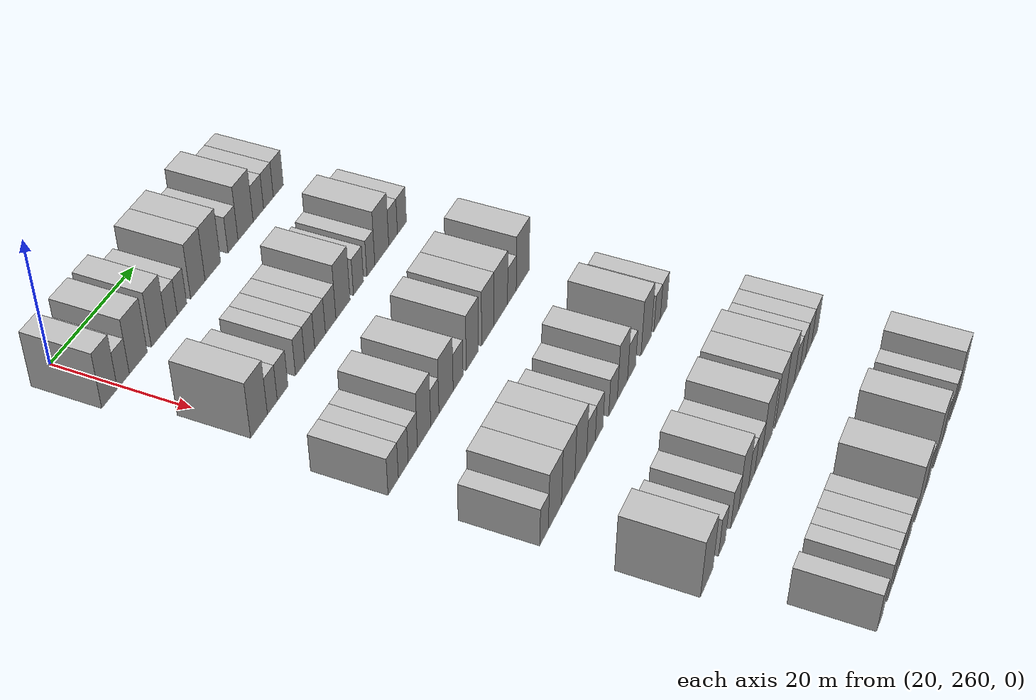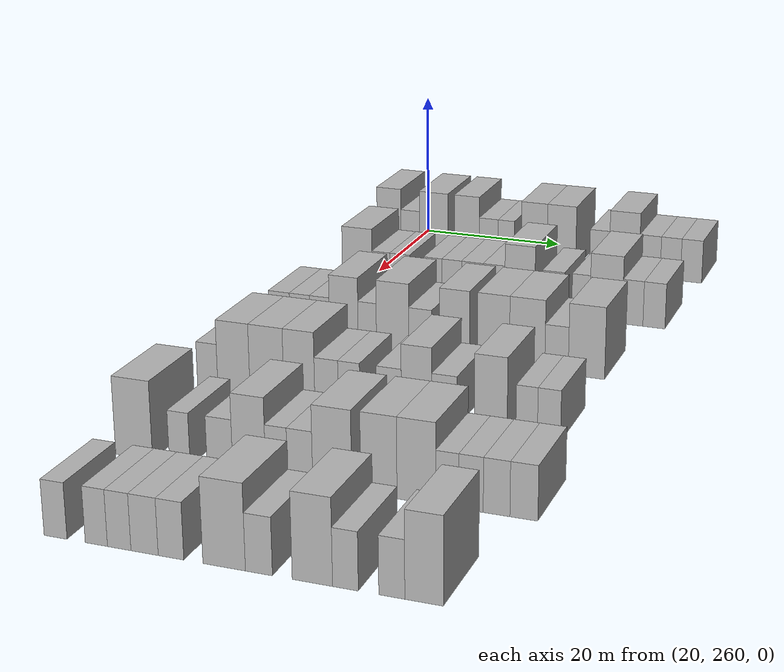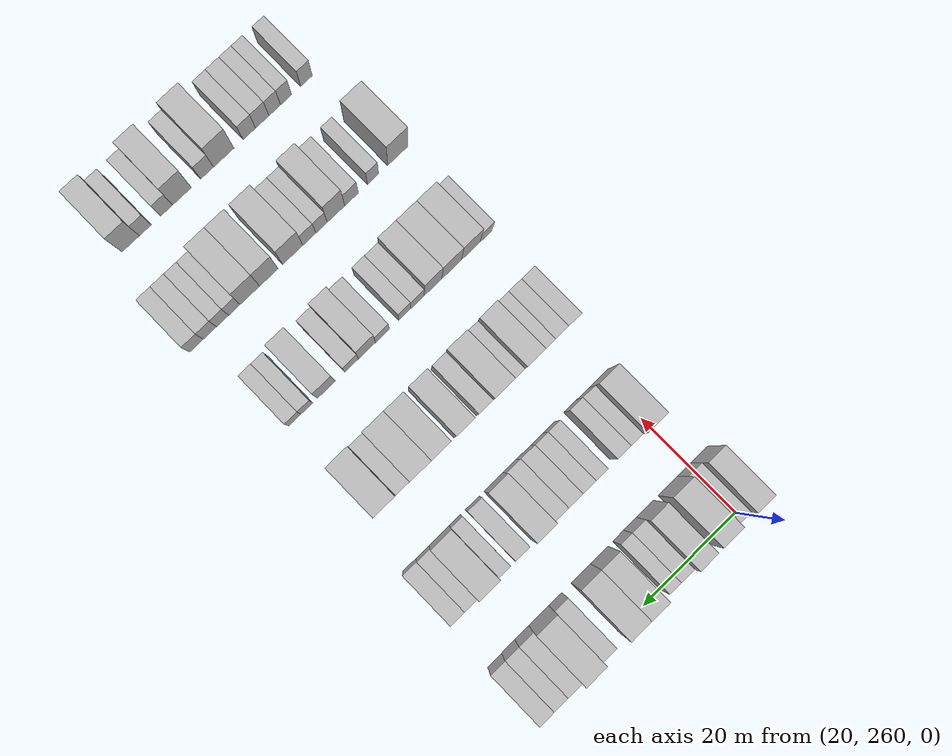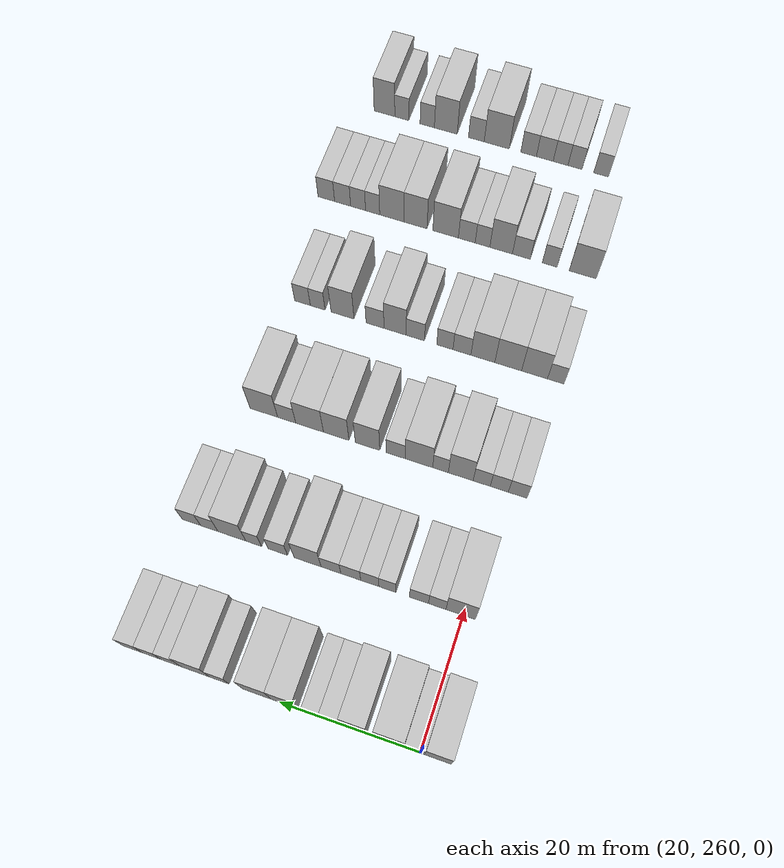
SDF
<sdf version="1.6">
 <world name="default">
  <model name="building_148">
   <static>1</static>
   <pose>25.0000 257.5959 0 0.000000 0.000000 0.000000</pose>
   <link name="link">
    <pose>0 0 4.50 0 0 0</pose>
    <collision name="collision"><geometry><box><size>10.0000 3.6611 9.0000</size></box></geometry></collision>
    <visual name="visual">
     <cast_shadows>0</cast_shadows>
     <geometry><box><size>10.0000 3.6611 9.0000</size></box></geometry>
     <material>
      <script>
       <uri>model://HANNAS_wall/materials/scripts</uri>
       <uri>model://HANNAS_wall/materials/textures</uri>
       <name>vrc/HANNAS_wall</name>
      </script>
     </material>
    </visual>
   </link>
  </model>
  <model name="building_149">
   <static>1</static>
   <pose>25.0000 260.8402 0 0.000000 0.000000 0.000000</pose>
   <link name="link">
    <pose>0 0 3.00 0 0 0</pose>
    <collision name="collision"><geometry><box><size>10.0000 2.8275 6.0000</size></box></geometry></collision>
    <visual name="visual">
     <cast_shadows>0</cast_shadows>
     <geometry><box><size>10.0000 2.8275 6.0000</size></box></geometry>
     <material>
      <script>
       <uri>model://HANNAS_wall/materials/scripts</uri>
       <uri>model://HANNAS_wall/materials/textures</uri>
       <name>vrc/HANNAS_wall</name>
      </script>
     </material>
    </visual>
   </link>
  </model>
  <model name="building_150">
   <static>1</static>
   <pose>25.0000 264.4085 0 0.000000 0.000000 0.000000</pose>
   <link name="link">
    <pose>0 0 4.50 0 0 0</pose>
    <collision name="collision"><geometry><box><size>10.0000 4.3092 9.0000</size></box></geometry></collision>
    <visual name="visual">
     <cast_shadows>0</cast_shadows>
     <geometry><box><size>10.0000 4.3092 9.0000</size></box></geometry>
     <material>
      <script>
       <uri>model://HANNAS_wall/materials/scripts</uri>
       <uri>model://HANNAS_wall/materials/textures</uri>
       <name>vrc/HANNAS_wall</name>
      </script>
     </material>
    </visual>
   </link>
  </model>
  <model name="building_151">
   <static>1</static>
   <pose>25.0000 269.4205 0 0.000000 0.000000 0.000000</pose>
   <link name="link">
    <pose>0 0 4.50 0 0 0</pose>
    <collision name="collision"><geometry><box><size>10.0000 3.7147 9.0000</size></box></geometry></collision>
    <visual name="visual">
     <cast_shadows>0</cast_shadows>
     <geometry><box><size>10.0000 3.7147 9.0000</size></box></geometry>
     <material>
      <script>
       <uri>model://HANNAS_wall/materials/scripts</uri>
       <uri>model://HANNAS_wall/materials/textures</uri>
       <name>vrc/HANNAS_wall</name>
      </script>
     </material>
    </visual>
   </link>
  </model>
  <model name="building_152">
   <static>1</static>
   <pose>25.0000 272.6669 0 0.000000 0.000000 0.000000</pose>
   <link name="link">
    <pose>0 0 3.00 0 0 0</pose>
    <collision name="collision"><geometry><box><size>10.0000 2.7781 6.0000</size></box></geometry></collision>
    <visual name="visual">
     <cast_shadows>0</cast_shadows>
     <geometry><box><size>10.0000 2.7781 6.0000</size></box></geometry>
     <material>
      <script>
       <uri>model://HANNAS_wall/materials/scripts</uri>
       <uri>model://HANNAS_wall/materials/textures</uri>
       <name>vrc/HANNAS_wall</name>
      </script>
     </material>
    </visual>
   </link>
  </model>
  <model name="building_153">
   <static>1</static>
   <pose>25.0000 275.2567 0 0.000000 0.000000 0.000000</pose>
   <link name="link">
    <pose>0 0 3.00 0 0 0</pose>
    <collision name="collision"><geometry><box><size>10.0000 2.4016 6.0000</size></box></geometry></collision>
    <visual name="visual">
     <cast_shadows>0</cast_shadows>
     <geometry><box><size>10.0000 2.4016 6.0000</size></box></geometry>
     <material>
      <script>
       <uri>model://HANNAS_wall/materials/scripts</uri>
       <uri>model://HANNAS_wall/materials/textures</uri>
       <name>vrc/HANNAS_wall</name>
      </script>
     </material>
    </visual>
   </link>
  </model>
  <model name="building_154">
   <static>1</static>
   <pose>25.0000 279.3544 0 0.000000 0.000000 0.000000</pose>
   <link name="link">
    <pose>0 0 4.50 0 0 0</pose>
    <collision name="collision"><geometry><box><size>10.0000 3.7937 9.0000</size></box></geometry></collision>
    <visual name="visual">
     <cast_shadows>0</cast_shadows>
     <geometry><box><size>10.0000 3.7937 9.0000</size></box></geometry>
     <material>
      <script>
       <uri>model://HANNAS_wall/materials/scripts</uri>
       <uri>model://HANNAS_wall/materials/textures</uri>
       <name>vrc/HANNAS_wall</name>
      </script>
     </material>
    </visual>
   </link>
  </model>
  <model name="building_155">
   <static>1</static>
   <pose>25.0000 283.3236 0 0.000000 0.000000 0.000000</pose>
   <link name="link">
    <pose>0 0 4.50 0 0 0</pose>
    <collision name="collision"><geometry><box><size>10.0000 4.1448 9.0000</size></box></geometry></collision>
    <visual name="visual">
     <cast_shadows>0</cast_shadows>
     <geometry><box><size>10.0000 4.1448 9.0000</size></box></geometry>
     <material>
      <script>
       <uri>model://HANNAS_wall/materials/scripts</uri>
       <uri>model://HANNAS_wall/materials/textures</uri>
       <name>vrc/HANNAS_wall</name>
      </script>
     </material>
    </visual>
   </link>
  </model>
  <model name="building_156">
   <static>1</static>
   <pose>25.0000 288.7891 0 0.000000 0.000000 0.000000</pose>
   <link name="link">
    <pose>0 0 3.00 0 0 0</pose>
    <collision name="collision"><geometry><box><size>10.0000 2.7862 6.0000</size></box></geometry></collision>
    <visual name="visual">
     <cast_shadows>0</cast_shadows>
     <geometry><box><size>10.0000 2.7862 6.0000</size></box></geometry>
     <material>
      <script>
       <uri>model://HANNAS_wall/materials/scripts</uri>
       <uri>model://HANNAS_wall/materials/textures</uri>
       <name>vrc/HANNAS_wall</name>
      </script>
     </material>
    </visual>
   </link>
  </model>
  <model name="building_157">
   <static>1</static>
   <pose>25.0000 292.3064 0 0.000000 0.000000 0.000000</pose>
   <link name="link">
    <pose>0 0 4.50 0 0 0</pose>
    <collision name="collision"><geometry><box><size>10.0000 4.2484 9.0000</size></box></geometry></collision>
    <visual name="visual">
     <cast_shadows>0</cast_shadows>
     <geometry><box><size>10.0000 4.2484 9.0000</size></box></geometry>
     <material>
      <script>
       <uri>model://HANNAS_wall/materials/scripts</uri>
       <uri>model://HANNAS_wall/materials/textures</uri>
       <name>vrc/HANNAS_wall</name>
      </script>
     </material>
    </visual>
   </link>
  </model>
  <model name="building_158">
   <static>1</static>
   <pose>25.0000 295.9214 0 0.000000 0.000000 0.000000</pose>
   <link name="link">
    <pose>0 0 3.00 0 0 0</pose>
    <collision name="collision"><geometry><box><size>10.0000 2.9815 6.0000</size></box></geometry></collision>
    <visual name="visual">
     <cast_shadows>0</cast_shadows>
     <geometry><box><size>10.0000 2.9815 6.0000</size></box></geometry>
     <material>
      <script>
       <uri>model://HANNAS_wall/materials/scripts</uri>
       <uri>model://HANNAS_wall/materials/textures</uri>
       <name>vrc/HANNAS_wall</name>
      </script>
     </material>
    </visual>
   </link>
  </model>
  <model name="building_159">
   <static>1</static>
   <pose>25.0000 298.8281 0 0.000000 0.000000 0.000000</pose>
   <link name="link">
    <pose>0 0 3.00 0 0 0</pose>
    <collision name="collision"><geometry><box><size>10.0000 2.8319 6.0000</size></box></geometry></collision>
    <visual name="visual">
     <cast_shadows>0</cast_shadows>
     <geometry><box><size>10.0000 2.8319 6.0000</size></box></geometry>
     <material>
      <script>
       <uri>model://HANNAS_wall/materials/scripts</uri>
       <uri>model://HANNAS_wall/materials/textures</uri>
       <name>vrc/HANNAS_wall</name>
      </script>
     </material>
    </visual>
   </link>
  </model>
  <model name="building_160">
   <static>1</static>
   <pose>25.0000 301.7126 0 0.000000 0.000000 0.000000</pose>
   <link name="link">
    <pose>0 0 3.00 0 0 0</pose>
    <collision name="collision"><geometry><box><size>10.0000 2.9373 6.0000</size></box></geometry></collision>
    <visual name="visual">
     <cast_shadows>0</cast_shadows>
     <geometry><box><size>10.0000 2.9373 6.0000</size></box></geometry>
     <material>
      <script>
       <uri>model://HANNAS_wall/materials/scripts</uri>
       <uri>model://HANNAS_wall/materials/textures</uri>
       <name>vrc/HANNAS_wall</name>
      </script>
     </material>
    </visual>
   </link>
  </model>
  <model name="building_323">
   <static>1</static>
   <pose>44.0000 260.4256 0 0.000000 0.000000 0.000000</pose>
   <link name="link">
    <pose>0 0 4.50 0 0 0</pose>
    <collision name="collision"><geometry><box><size>10.0000 4.2728 9.0000</size></box></geometry></collision>
    <visual name="visual">
     <cast_shadows>0</cast_shadows>
     <geometry><box><size>10.0000 4.2728 9.0000</size></box></geometry>
     <material>
      <script>
       <uri>model://HANNAS_wall/materials/scripts</uri>
       <uri>model://HANNAS_wall/materials/textures</uri>
       <name>vrc/HANNAS_wall</name>
      </script>
     </material>
    </visual>
   </link>
  </model>
  <model name="building_324">
   <static>1</static>
   <pose>44.0000 263.8380 0 0.000000 0.000000 0.000000</pose>
   <link name="link">
    <pose>0 0 3.00 0 0 0</pose>
    <collision name="collision"><geometry><box><size>10.0000 2.5521 6.0000</size></box></geometry></collision>
    <visual name="visual">
     <cast_shadows>0</cast_shadows>
     <geometry><box><size>10.0000 2.5521 6.0000</size></box></geometry>
     <material>
      <script>
       <uri>model://HANNAS_wall/materials/scripts</uri>
       <uri>model://HANNAS_wall/materials/textures</uri>
       <name>vrc/HANNAS_wall</name>
      </script>
     </material>
    </visual>
   </link>
  </model>
  <model name="building_325">
   <static>1</static>
   <pose>44.0000 266.5195 0 0.000000 0.000000 0.000000</pose>
   <link name="link">
    <pose>0 0 3.00 0 0 0</pose>
    <collision name="collision"><geometry><box><size>10.0000 2.8108 6.0000</size></box></geometry></collision>
    <visual name="visual">
     <cast_shadows>0</cast_shadows>
     <geometry><box><size>10.0000 2.8108 6.0000</size></box></geometry>
     <material>
      <script>
       <uri>model://HANNAS_wall/materials/scripts</uri>
       <uri>model://HANNAS_wall/materials/textures</uri>
       <name>vrc/HANNAS_wall</name>
      </script>
     </material>
    </visual>
   </link>
  </model>
  <model name="building_326">
   <static>1</static>
   <pose>44.0000 271.1930 0 0.000000 0.000000 0.000000</pose>
   <link name="link">
    <pose>0 0 3.00 0 0 0</pose>
    <collision name="collision"><geometry><box><size>10.0000 2.5361 6.0000</size></box></geometry></collision>
    <visual name="visual">
     <cast_shadows>0</cast_shadows>
     <geometry><box><size>10.0000 2.5361 6.0000</size></box></geometry>
     <material>
      <script>
       <uri>model://HANNAS_wall/materials/scripts</uri>
       <uri>model://HANNAS_wall/materials/textures</uri>
       <name>vrc/HANNAS_wall</name>
      </script>
     </material>
    </visual>
   </link>
  </model>
  <model name="building_327">
   <static>1</static>
   <pose>44.0000 273.8186 0 0.000000 0.000000 0.000000</pose>
   <link name="link">
    <pose>0 0 3.00 0 0 0</pose>
    <collision name="collision"><geometry><box><size>10.0000 2.7152 6.0000</size></box></geometry></collision>
    <visual name="visual">
     <cast_shadows>0</cast_shadows>
     <geometry><box><size>10.0000 2.7152 6.0000</size></box></geometry>
     <material>
      <script>
       <uri>model://HANNAS_wall/materials/scripts</uri>
       <uri>model://HANNAS_wall/materials/textures</uri>
       <name>vrc/HANNAS_wall</name>
      </script>
     </material>
    </visual>
   </link>
  </model>
  <model name="building_328">
   <static>1</static>
   <pose>44.0000 276.6700 0 0.000000 0.000000 0.000000</pose>
   <link name="link">
    <pose>0 0 3.00 0 0 0</pose>
    <collision name="collision"><geometry><box><size>10.0000 2.9875 6.0000</size></box></geometry></collision>
    <visual name="visual">
     <cast_shadows>0</cast_shadows>
     <geometry><box><size>10.0000 2.9875 6.0000</size></box></geometry>
     <material>
      <script>
       <uri>model://HANNAS_wall/materials/scripts</uri>
       <uri>model://HANNAS_wall/materials/textures</uri>
       <name>vrc/HANNAS_wall</name>
      </script>
     </material>
    </visual>
   </link>
  </model>
  <model name="building_329">
   <static>1</static>
   <pose>44.0000 279.6482 0 0.000000 0.000000 0.000000</pose>
   <link name="link">
    <pose>0 0 3.00 0 0 0</pose>
    <collision name="collision"><geometry><box><size>10.0000 2.9689 6.0000</size></box></geometry></collision>
    <visual name="visual">
     <cast_shadows>0</cast_shadows>
     <geometry><box><size>10.0000 2.9689 6.0000</size></box></geometry>
     <material>
      <script>
       <uri>model://HANNAS_wall/materials/scripts</uri>
       <uri>model://HANNAS_wall/materials/textures</uri>
       <name>vrc/HANNAS_wall</name>
      </script>
     </material>
    </visual>
   </link>
  </model>
  <model name="building_330">
   <static>1</static>
   <pose>44.0000 283.1737 0 0.000000 0.000000 0.000000</pose>
   <link name="link">
    <pose>0 0 4.50 0 0 0</pose>
    <collision name="collision"><geometry><box><size>10.0000 4.0821 9.0000</size></box></geometry></collision>
    <visual name="visual">
     <cast_shadows>0</cast_shadows>
     <geometry><box><size>10.0000 4.0821 9.0000</size></box></geometry>
     <material>
      <script>
       <uri>model://HANNAS_wall/materials/scripts</uri>
       <uri>model://HANNAS_wall/materials/textures</uri>
       <name>vrc/HANNAS_wall</name>
      </script>
     </material>
    </visual>
   </link>
  </model>
  <model name="building_331">
   <static>1</static>
   <pose>44.0000 287.7044 0 0.000000 0.000000 0.000000</pose>
   <link name="link">
    <pose>0 0 3.00 0 0 0</pose>
    <collision name="collision"><geometry><box><size>10.0000 2.9794 6.0000</size></box></geometry></collision>
    <visual name="visual">
     <cast_shadows>0</cast_shadows>
     <geometry><box><size>10.0000 2.9794 6.0000</size></box></geometry>
     <material>
      <script>
       <uri>model://HANNAS_wall/materials/scripts</uri>
       <uri>model://HANNAS_wall/materials/textures</uri>
       <name>vrc/HANNAS_wall</name>
      </script>
     </material>
    </visual>
   </link>
  </model>
  <model name="building_332">
   <static>1</static>
   <pose>44.0000 291.3998 0 0.000000 0.000000 0.000000</pose>
   <link name="link">
    <pose>0 0 3.00 0 0 0</pose>
    <collision name="collision"><geometry><box><size>10.0000 2.4114 6.0000</size></box></geometry></collision>
    <visual name="visual">
     <cast_shadows>0</cast_shadows>
     <geometry><box><size>10.0000 2.4114 6.0000</size></box></geometry>
     <material>
      <script>
       <uri>model://HANNAS_wall/materials/scripts</uri>
       <uri>model://HANNAS_wall/materials/textures</uri>
       <name>vrc/HANNAS_wall</name>
      </script>
     </material>
    </visual>
   </link>
  </model>
  <model name="building_333">
   <static>1</static>
   <pose>44.0000 294.7535 0 0.000000 0.000000 0.000000</pose>
   <link name="link">
    <pose>0 0 4.50 0 0 0</pose>
    <collision name="collision"><geometry><box><size>10.0000 4.2961 9.0000</size></box></geometry></collision>
    <visual name="visual">
     <cast_shadows>0</cast_shadows>
     <geometry><box><size>10.0000 4.2961 9.0000</size></box></geometry>
     <material>
      <script>
       <uri>model://HANNAS_wall/materials/scripts</uri>
       <uri>model://HANNAS_wall/materials/textures</uri>
       <name>vrc/HANNAS_wall</name>
      </script>
     </material>
    </visual>
   </link>
  </model>
  <model name="building_334">
   <static>1</static>
   <pose>44.0000 298.2589 0 0.000000 0.000000 0.000000</pose>
   <link name="link">
    <pose>0 0 3.00 0 0 0</pose>
    <collision name="collision"><geometry><box><size>10.0000 2.7146 6.0000</size></box></geometry></collision>
    <visual name="visual">
     <cast_shadows>0</cast_shadows>
     <geometry><box><size>10.0000 2.7146 6.0000</size></box></geometry>
     <material>
      <script>
       <uri>model://HANNAS_wall/materials/scripts</uri>
       <uri>model://HANNAS_wall/materials/textures</uri>
       <name>vrc/HANNAS_wall</name>
      </script>
     </material>
    </visual>
   </link>
  </model>
  <model name="building_335">
   <static>1</static>
   <pose>44.0000 301.0510 0 0.000000 0.000000 0.000000</pose>
   <link name="link">
    <pose>0 0 3.00 0 0 0</pose>
    <collision name="collision"><geometry><box><size>10.0000 2.8697 6.0000</size></box></geometry></collision>
    <visual name="visual">
     <cast_shadows>0</cast_shadows>
     <geometry><box><size>10.0000 2.8697 6.0000</size></box></geometry>
     <material>
      <script>
       <uri>model://HANNAS_wall/materials/scripts</uri>
       <uri>model://HANNAS_wall/materials/textures</uri>
       <name>vrc/HANNAS_wall</name>
      </script>
     </material>
    </visual>
   </link>
  </model>
  <model name="building_492">
   <static>1</static>
   <pose>63.0000 257.6945 0 0.000000 0.000000 0.000000</pose>
   <link name="link">
    <pose>0 0 3.00 0 0 0</pose>
    <collision name="collision"><geometry><box><size>10.0000 2.8316 6.0000</size></box></geometry></collision>
    <visual name="visual">
     <cast_shadows>0</cast_shadows>
     <geometry><box><size>10.0000 2.8316 6.0000</size></box></geometry>
     <material>
      <script>
       <uri>model://HANNAS_wall/materials/scripts</uri>
       <uri>model://HANNAS_wall/materials/textures</uri>
       <name>vrc/HANNAS_wall</name>
      </script>
     </material>
    </visual>
   </link>
  </model>
  <model name="building_493">
   <static>1</static>
   <pose>63.0000 260.4779 0 0.000000 0.000000 0.000000</pose>
   <link name="link">
    <pose>0 0 3.00 0 0 0</pose>
    <collision name="collision"><geometry><box><size>10.0000 2.7353 6.0000</size></box></geometry></collision>
    <visual name="visual">
     <cast_shadows>0</cast_shadows>
     <geometry><box><size>10.0000 2.7353 6.0000</size></box></geometry>
     <material>
      <script>
       <uri>model://HANNAS_wall/materials/scripts</uri>
       <uri>model://HANNAS_wall/materials/textures</uri>
       <name>vrc/HANNAS_wall</name>
      </script>
     </material>
    </visual>
   </link>
  </model>
  <model name="building_494">
   <static>1</static>
   <pose>63.0000 263.1560 0 0.000000 0.000000 0.000000</pose>
   <link name="link">
    <pose>0 0 3.00 0 0 0</pose>
    <collision name="collision"><geometry><box><size>10.0000 2.6209 6.0000</size></box></geometry></collision>
    <visual name="visual">
     <cast_shadows>0</cast_shadows>
     <geometry><box><size>10.0000 2.6209 6.0000</size></box></geometry>
     <material>
      <script>
       <uri>model://HANNAS_wall/materials/scripts</uri>
       <uri>model://HANNAS_wall/materials/textures</uri>
       <name>vrc/HANNAS_wall</name>
      </script>
     </material>
    </visual>
   </link>
  </model>
  <model name="building_495">
   <static>1</static>
   <pose>63.0000 266.3746 0 0.000000 0.000000 0.000000</pose>
   <link name="link">
    <pose>0 0 4.50 0 0 0</pose>
    <collision name="collision"><geometry><box><size>10.0000 3.8163 9.0000</size></box></geometry></collision>
    <visual name="visual">
     <cast_shadows>0</cast_shadows>
     <geometry><box><size>10.0000 3.8163 9.0000</size></box></geometry>
     <material>
      <script>
       <uri>model://HANNAS_wall/materials/scripts</uri>
       <uri>model://HANNAS_wall/materials/textures</uri>
       <name>vrc/HANNAS_wall</name>
      </script>
     </material>
    </visual>
   </link>
  </model>
  <model name="building_496">
   <static>1</static>
   <pose>63.0000 269.4901 0 0.000000 0.000000 0.000000</pose>
   <link name="link">
    <pose>0 0 3.00 0 0 0</pose>
    <collision name="collision"><geometry><box><size>10.0000 2.4147 6.0000</size></box></geometry></collision>
    <visual name="visual">
     <cast_shadows>0</cast_shadows>
     <geometry><box><size>10.0000 2.4147 6.0000</size></box></geometry>
     <material>
      <script>
       <uri>model://HANNAS_wall/materials/scripts</uri>
       <uri>model://HANNAS_wall/materials/textures</uri>
       <name>vrc/HANNAS_wall</name>
      </script>
     </material>
    </visual>
   </link>
  </model>
  <model name="building_497">
   <static>1</static>
   <pose>63.0000 272.8217 0 0.000000 0.000000 0.000000</pose>
   <link name="link">
    <pose>0 0 4.50 0 0 0</pose>
    <collision name="collision"><geometry><box><size>10.0000 4.2485 9.0000</size></box></geometry></collision>
    <visual name="visual">
     <cast_shadows>0</cast_shadows>
     <geometry><box><size>10.0000 4.2485 9.0000</size></box></geometry>
     <material>
      <script>
       <uri>model://HANNAS_wall/materials/scripts</uri>
       <uri>model://HANNAS_wall/materials/textures</uri>
       <name>vrc/HANNAS_wall</name>
      </script>
     </material>
    </visual>
   </link>
  </model>
  <model name="building_498">
   <static>1</static>
   <pose>63.0000 276.4423 0 0.000000 0.000000 0.000000</pose>
   <link name="link">
    <pose>0 0 3.00 0 0 0</pose>
    <collision name="collision"><geometry><box><size>10.0000 2.9928 6.0000</size></box></geometry></collision>
    <visual name="visual">
     <cast_shadows>0</cast_shadows>
     <geometry><box><size>10.0000 2.9928 6.0000</size></box></geometry>
     <material>
      <script>
       <uri>model://HANNAS_wall/materials/scripts</uri>
       <uri>model://HANNAS_wall/materials/textures</uri>
       <name>vrc/HANNAS_wall</name>
      </script>
     </material>
    </visual>
   </link>
  </model>
  <model name="building_499">
   <static>1</static>
   <pose>63.0000 280.8597 0 0.000000 0.000000 0.000000</pose>
   <link name="link">
    <pose>0 0 4.50 0 0 0</pose>
    <collision name="collision"><geometry><box><size>10.0000 3.8421 9.0000</size></box></geometry></collision>
    <visual name="visual">
     <cast_shadows>0</cast_shadows>
     <geometry><box><size>10.0000 3.8421 9.0000</size></box></geometry>
     <material>
      <script>
       <uri>model://HANNAS_wall/materials/scripts</uri>
       <uri>model://HANNAS_wall/materials/textures</uri>
       <name>vrc/HANNAS_wall</name>
      </script>
     </material>
    </visual>
   </link>
  </model>
  <model name="building_500">
   <static>1</static>
   <pose>63.0000 285.7997 0 0.000000 0.000000 0.000000</pose>
   <link name="link">
    <pose>0 0 4.50 0 0 0</pose>
    <collision name="collision"><geometry><box><size>10.0000 4.0378 9.0000</size></box></geometry></collision>
    <visual name="visual">
     <cast_shadows>0</cast_shadows>
     <geometry><box><size>10.0000 4.0378 9.0000</size></box></geometry>
     <material>
      <script>
       <uri>model://HANNAS_wall/materials/scripts</uri>
       <uri>model://HANNAS_wall/materials/textures</uri>
       <name>vrc/HANNAS_wall</name>
      </script>
     </material>
    </visual>
   </link>
  </model>
  <model name="building_501">
   <static>1</static>
   <pose>63.0000 290.0323 0 0.000000 0.000000 0.000000</pose>
   <link name="link">
    <pose>0 0 4.50 0 0 0</pose>
    <collision name="collision"><geometry><box><size>10.0000 4.4273 9.0000</size></box></geometry></collision>
    <visual name="visual">
     <cast_shadows>0</cast_shadows>
     <geometry><box><size>10.0000 4.4273 9.0000</size></box></geometry>
     <material>
      <script>
       <uri>model://HANNAS_wall/materials/scripts</uri>
       <uri>model://HANNAS_wall/materials/textures</uri>
       <name>vrc/HANNAS_wall</name>
      </script>
     </material>
    </visual>
   </link>
  </model>
  <model name="building_502">
   <static>1</static>
   <pose>63.0000 293.6960 0 0.000000 0.000000 0.000000</pose>
   <link name="link">
    <pose>0 0 3.00 0 0 0</pose>
    <collision name="collision"><geometry><box><size>10.0000 2.9002 6.0000</size></box></geometry></collision>
    <visual name="visual">
     <cast_shadows>0</cast_shadows>
     <geometry><box><size>10.0000 2.9002 6.0000</size></box></geometry>
     <material>
      <script>
       <uri>model://HANNAS_wall/materials/scripts</uri>
       <uri>model://HANNAS_wall/materials/textures</uri>
       <name>vrc/HANNAS_wall</name>
      </script>
     </material>
    </visual>
   </link>
  </model>
  <model name="building_503">
   <static>1</static>
   <pose>63.0000 297.3748 0 0.000000 0.000000 0.000000</pose>
   <link name="link">
    <pose>0 0 4.50 0 0 0</pose>
    <collision name="collision"><geometry><box><size>10.0000 4.4576 9.0000</size></box></geometry></collision>
    <visual name="visual">
     <cast_shadows>0</cast_shadows>
     <geometry><box><size>10.0000 4.4576 9.0000</size></box></geometry>
     <material>
      <script>
       <uri>model://HANNAS_wall/materials/scripts</uri>
       <uri>model://HANNAS_wall/materials/textures</uri>
       <name>vrc/HANNAS_wall</name>
      </script>
     </material>
    </visual>
   </link>
  </model>
  <model name="building_667">
   <static>1</static>
   <pose>82.0000 257.1990 0 0.000000 0.000000 0.000000</pose>
   <link name="link">
    <pose>0 0 3.00 0 0 0</pose>
    <collision name="collision"><geometry><box><size>10.0000 2.6084 6.0000</size></box></geometry></collision>
    <visual name="visual">
     <cast_shadows>0</cast_shadows>
     <geometry><box><size>10.0000 2.6084 6.0000</size></box></geometry>
     <material>
      <script>
       <uri>model://HANNAS_wall/materials/scripts</uri>
       <uri>model://HANNAS_wall/materials/textures</uri>
       <name>vrc/HANNAS_wall</name>
      </script>
     </material>
    </visual>
   </link>
  </model>
  <model name="building_668">
   <static>1</static>
   <pose>82.0000 260.5521 0 0.000000 0.000000 0.000000</pose>
   <link name="link">
    <pose>0 0 4.50 0 0 0</pose>
    <collision name="collision"><geometry><box><size>10.0000 4.0978 9.0000</size></box></geometry></collision>
    <visual name="visual">
     <cast_shadows>0</cast_shadows>
     <geometry><box><size>10.0000 4.0978 9.0000</size></box></geometry>
     <material>
      <script>
       <uri>model://HANNAS_wall/materials/scripts</uri>
       <uri>model://HANNAS_wall/materials/textures</uri>
       <name>vrc/HANNAS_wall</name>
      </script>
     </material>
    </visual>
   </link>
  </model>
  <model name="building_669">
   <static>1</static>
   <pose>82.0000 264.7368 0 0.000000 0.000000 0.000000</pose>
   <link name="link">
    <pose>0 0 4.50 0 0 0</pose>
    <collision name="collision"><geometry><box><size>10.0000 4.2716 9.0000</size></box></geometry></collision>
    <visual name="visual">
     <cast_shadows>0</cast_shadows>
     <geometry><box><size>10.0000 4.2716 9.0000</size></box></geometry>
     <material>
      <script>
       <uri>model://HANNAS_wall/materials/scripts</uri>
       <uri>model://HANNAS_wall/materials/textures</uri>
       <name>vrc/HANNAS_wall</name>
      </script>
     </material>
    </visual>
   </link>
  </model>
  <model name="building_670">
   <static>1</static>
   <pose>82.0000 268.7907 0 0.000000 0.000000 0.000000</pose>
   <link name="link">
    <pose>0 0 4.50 0 0 0</pose>
    <collision name="collision"><geometry><box><size>10.0000 3.8363 9.0000</size></box></geometry></collision>
    <visual name="visual">
     <cast_shadows>0</cast_shadows>
     <geometry><box><size>10.0000 3.8363 9.0000</size></box></geometry>
     <material>
      <script>
       <uri>model://HANNAS_wall/materials/scripts</uri>
       <uri>model://HANNAS_wall/materials/textures</uri>
       <name>vrc/HANNAS_wall</name>
      </script>
     </material>
    </visual>
   </link>
  </model>
  <model name="building_671">
   <static>1</static>
   <pose>82.0000 272.1527 0 0.000000 0.000000 0.000000</pose>
   <link name="link">
    <pose>0 0 3.00 0 0 0</pose>
    <collision name="collision"><geometry><box><size>10.0000 2.8877 6.0000</size></box></geometry></collision>
    <visual name="visual">
     <cast_shadows>0</cast_shadows>
     <geometry><box><size>10.0000 2.8877 6.0000</size></box></geometry>
     <material>
      <script>
       <uri>model://HANNAS_wall/materials/scripts</uri>
       <uri>model://HANNAS_wall/materials/textures</uri>
       <name>vrc/HANNAS_wall</name>
      </script>
     </material>
    </visual>
   </link>
  </model>
  <model name="building_672">
   <static>1</static>
   <pose>82.0000 274.9118 0 0.000000 0.000000 0.000000</pose>
   <link name="link">
    <pose>0 0 3.00 0 0 0</pose>
    <collision name="collision"><geometry><box><size>10.0000 2.6304 6.0000</size></box></geometry></collision>
    <visual name="visual">
     <cast_shadows>0</cast_shadows>
     <geometry><box><size>10.0000 2.6304 6.0000</size></box></geometry>
     <material>
      <script>
       <uri>model://HANNAS_wall/materials/scripts</uri>
       <uri>model://HANNAS_wall/materials/textures</uri>
       <name>vrc/HANNAS_wall</name>
      </script>
     </material>
    </visual>
   </link>
  </model>
  <model name="building_673">
   <static>1</static>
   <pose>82.0000 279.7228 0 0.000000 0.000000 0.000000</pose>
   <link name="link">
    <pose>0 0 3.00 0 0 0</pose>
    <collision name="collision"><geometry><box><size>10.0000 2.9917 6.0000</size></box></geometry></collision>
    <visual name="visual">
     <cast_shadows>0</cast_shadows>
     <geometry><box><size>10.0000 2.9917 6.0000</size></box></geometry>
     <material>
      <script>
       <uri>model://HANNAS_wall/materials/scripts</uri>
       <uri>model://HANNAS_wall/materials/textures</uri>
       <name>vrc/HANNAS_wall</name>
      </script>
     </material>
    </visual>
   </link>
  </model>
  <model name="building_674">
   <static>1</static>
   <pose>82.0000 283.0300 0 0.000000 0.000000 0.000000</pose>
   <link name="link">
    <pose>0 0 4.50 0 0 0</pose>
    <collision name="collision"><geometry><box><size>10.0000 3.6225 9.0000</size></box></geometry></collision>
    <visual name="visual">
     <cast_shadows>0</cast_shadows>
     <geometry><box><size>10.0000 3.6225 9.0000</size></box></geometry>
     <material>
      <script>
       <uri>model://HANNAS_wall/materials/scripts</uri>
       <uri>model://HANNAS_wall/materials/textures</uri>
       <name>vrc/HANNAS_wall</name>
      </script>
     </material>
    </visual>
   </link>
  </model>
  <model name="building_675">
   <static>1</static>
   <pose>82.0000 286.3219 0 0.000000 0.000000 0.000000</pose>
   <link name="link">
    <pose>0 0 3.00 0 0 0</pose>
    <collision name="collision"><geometry><box><size>10.0000 2.9614 6.0000</size></box></geometry></collision>
    <visual name="visual">
     <cast_shadows>0</cast_shadows>
     <geometry><box><size>10.0000 2.9614 6.0000</size></box></geometry>
     <material>
      <script>
       <uri>model://HANNAS_wall/materials/scripts</uri>
       <uri>model://HANNAS_wall/materials/textures</uri>
       <name>vrc/HANNAS_wall</name>
      </script>
     </material>
    </visual>
   </link>
  </model>
  <model name="building_676">
   <static>1</static>
   <pose>82.0000 291.7042 0 0.000000 0.000000 0.000000</pose>
   <link name="link">
    <pose>0 0 4.50 0 0 0</pose>
    <collision name="collision"><geometry><box><size>10.0000 3.8032 9.0000</size></box></geometry></collision>
    <visual name="visual">
     <cast_shadows>0</cast_shadows>
     <geometry><box><size>10.0000 3.8032 9.0000</size></box></geometry>
     <material>
      <script>
       <uri>model://HANNAS_wall/materials/scripts</uri>
       <uri>model://HANNAS_wall/materials/textures</uri>
       <name>vrc/HANNAS_wall</name>
      </script>
     </material>
    </visual>
   </link>
  </model>
  <model name="building_677">
   <static>1</static>
   <pose>82.0000 295.8368 0 0.000000 0.000000 0.000000</pose>
   <link name="link">
    <pose>0 0 3.00 0 0 0</pose>
    <collision name="collision"><geometry><box><size>10.0000 2.4619 6.0000</size></box></geometry></collision>
    <visual name="visual">
     <cast_shadows>0</cast_shadows>
     <geometry><box><size>10.0000 2.4619 6.0000</size></box></geometry>
     <material>
      <script>
       <uri>model://HANNAS_wall/materials/scripts</uri>
       <uri>model://HANNAS_wall/materials/textures</uri>
       <name>vrc/HANNAS_wall</name>
      </script>
     </material>
    </visual>
   </link>
  </model>
  <model name="building_678">
   <static>1</static>
   <pose>82.0000 298.3778 0 0.000000 0.000000 0.000000</pose>
   <link name="link">
    <pose>0 0 3.00 0 0 0</pose>
    <collision name="collision"><geometry><box><size>10.0000 2.6202 6.0000</size></box></geometry></collision>
    <visual name="visual">
     <cast_shadows>0</cast_shadows>
     <geometry><box><size>10.0000 2.6202 6.0000</size></box></geometry>
     <material>
      <script>
       <uri>model://HANNAS_wall/materials/scripts</uri>
       <uri>model://HANNAS_wall/materials/textures</uri>
       <name>vrc/HANNAS_wall</name>
      </script>
     </material>
    </visual>
   </link>
  </model>
  <model name="building_836">
   <static>1</static>
   <pose>101.0000 258.0024 0 0.000000 0.000000 0.000000</pose>
   <link name="link">
    <pose>0 0 4.50 0 0 0</pose>
    <collision name="collision"><geometry><box><size>10.0000 4.4234 9.0000</size></box></geometry></collision>
    <visual name="visual">
     <cast_shadows>0</cast_shadows>
     <geometry><box><size>10.0000 4.4234 9.0000</size></box></geometry>
     <material>
      <script>
       <uri>model://HANNAS_wall/materials/scripts</uri>
       <uri>model://HANNAS_wall/materials/textures</uri>
       <name>vrc/HANNAS_wall</name>
      </script>
     </material>
    </visual>
   </link>
  </model>
  <model name="building_837">
   <static>1</static>
   <pose>101.0000 263.4338 0 0.000000 0.000000 0.000000</pose>
   <link name="link">
    <pose>0 0 3.00 0 0 0</pose>
    <collision name="collision"><geometry><box><size>10.0000 2.4393 6.0000</size></box></geometry></collision>
    <visual name="visual">
     <cast_shadows>0</cast_shadows>
     <geometry><box><size>10.0000 2.4393 6.0000</size></box></geometry>
     <material>
      <script>
       <uri>model://HANNAS_wall/materials/scripts</uri>
       <uri>model://HANNAS_wall/materials/textures</uri>
       <name>vrc/HANNAS_wall</name>
      </script>
     </material>
    </visual>
   </link>
  </model>
  <model name="building_838">
   <static>1</static>
   <pose>101.0000 268.1403 0 0.000000 0.000000 0.000000</pose>
   <link name="link">
    <pose>0 0 3.00 0 0 0</pose>
    <collision name="collision"><geometry><box><size>10.0000 2.9738 6.0000</size></box></geometry></collision>
    <visual name="visual">
     <cast_shadows>0</cast_shadows>
     <geometry><box><size>10.0000 2.9738 6.0000</size></box></geometry>
     <material>
      <script>
       <uri>model://HANNAS_wall/materials/scripts</uri>
       <uri>model://HANNAS_wall/materials/textures</uri>
       <name>vrc/HANNAS_wall</name>
      </script>
     </material>
    </visual>
   </link>
  </model>
  <model name="building_839">
   <static>1</static>
   <pose>101.0000 271.5181 0 0.000000 0.000000 0.000000</pose>
   <link name="link">
    <pose>0 0 4.50 0 0 0</pose>
    <collision name="collision"><geometry><box><size>10.0000 3.7818 9.0000</size></box></geometry></collision>
    <visual name="visual">
     <cast_shadows>0</cast_shadows>
     <geometry><box><size>10.0000 3.7818 9.0000</size></box></geometry>
     <material>
      <script>
       <uri>model://HANNAS_wall/materials/scripts</uri>
       <uri>model://HANNAS_wall/materials/textures</uri>
       <name>vrc/HANNAS_wall</name>
      </script>
     </material>
    </visual>
   </link>
  </model>
  <model name="building_840">
   <static>1</static>
   <pose>101.0000 274.6421 0 0.000000 0.000000 0.000000</pose>
   <link name="link">
    <pose>0 0 3.00 0 0 0</pose>
    <collision name="collision"><geometry><box><size>10.0000 2.4662 6.0000</size></box></geometry></collision>
    <visual name="visual">
     <cast_shadows>0</cast_shadows>
     <geometry><box><size>10.0000 2.4662 6.0000</size></box></geometry>
     <material>
      <script>
       <uri>model://HANNAS_wall/materials/scripts</uri>
       <uri>model://HANNAS_wall/materials/textures</uri>
       <name>vrc/HANNAS_wall</name>
      </script>
     </material>
    </visual>
   </link>
  </model>
  <model name="building_841">
   <static>1</static>
   <pose>101.0000 277.2935 0 0.000000 0.000000 0.000000</pose>
   <link name="link">
    <pose>0 0 3.00 0 0 0</pose>
    <collision name="collision"><geometry><box><size>10.0000 2.8366 6.0000</size></box></geometry></collision>
    <visual name="visual">
     <cast_shadows>0</cast_shadows>
     <geometry><box><size>10.0000 2.8366 6.0000</size></box></geometry>
     <material>
      <script>
       <uri>model://HANNAS_wall/materials/scripts</uri>
       <uri>model://HANNAS_wall/materials/textures</uri>
       <name>vrc/HANNAS_wall</name>
      </script>
     </material>
    </visual>
   </link>
  </model>
  <model name="building_842">
   <static>1</static>
   <pose>101.0000 280.8787 0 0.000000 0.000000 0.000000</pose>
   <link name="link">
    <pose>0 0 4.50 0 0 0</pose>
    <collision name="collision"><geometry><box><size>10.0000 4.3339 9.0000</size></box></geometry></collision>
    <visual name="visual">
     <cast_shadows>0</cast_shadows>
     <geometry><box><size>10.0000 4.3339 9.0000</size></box></geometry>
     <material>
      <script>
       <uri>model://HANNAS_wall/materials/scripts</uri>
       <uri>model://HANNAS_wall/materials/textures</uri>
       <name>vrc/HANNAS_wall</name>
      </script>
     </material>
    </visual>
   </link>
  </model>
  <model name="building_843">
   <static>1</static>
   <pose>101.0000 286.0173 0 0.000000 0.000000 0.000000</pose>
   <link name="link">
    <pose>0 0 4.50 0 0 0</pose>
    <collision name="collision"><geometry><box><size>10.0000 3.9434 9.0000</size></box></geometry></collision>
    <visual name="visual">
     <cast_shadows>0</cast_shadows>
     <geometry><box><size>10.0000 3.9434 9.0000</size></box></geometry>
     <material>
      <script>
       <uri>model://HANNAS_wall/materials/scripts</uri>
       <uri>model://HANNAS_wall/materials/textures</uri>
       <name>vrc/HANNAS_wall</name>
      </script>
     </material>
    </visual>
   </link>
  </model>
  <model name="building_844">
   <static>1</static>
   <pose>101.0000 290.0704 0 0.000000 0.000000 0.000000</pose>
   <link name="link">
    <pose>0 0 4.50 0 0 0</pose>
    <collision name="collision"><geometry><box><size>10.0000 4.1629 9.0000</size></box></geometry></collision>
    <visual name="visual">
     <cast_shadows>0</cast_shadows>
     <geometry><box><size>10.0000 4.1629 9.0000</size></box></geometry>
     <material>
      <script>
       <uri>model://HANNAS_wall/materials/scripts</uri>
       <uri>model://HANNAS_wall/materials/textures</uri>
       <name>vrc/HANNAS_wall</name>
      </script>
     </material>
    </visual>
   </link>
  </model>
  <model name="building_845">
   <static>1</static>
   <pose>101.0000 293.3735 0 0.000000 0.000000 0.000000</pose>
   <link name="link">
    <pose>0 0 3.00 0 0 0</pose>
    <collision name="collision"><geometry><box><size>10.0000 2.4432 6.0000</size></box></geometry></collision>
    <visual name="visual">
     <cast_shadows>0</cast_shadows>
     <geometry><box><size>10.0000 2.4432 6.0000</size></box></geometry>
     <material>
      <script>
       <uri>model://HANNAS_wall/materials/scripts</uri>
       <uri>model://HANNAS_wall/materials/textures</uri>
       <name>vrc/HANNAS_wall</name>
      </script>
     </material>
    </visual>
   </link>
  </model>
  <model name="building_846">
   <static>1</static>
   <pose>101.0000 295.8863 0 0.000000 0.000000 0.000000</pose>
   <link name="link">
    <pose>0 0 3.00 0 0 0</pose>
    <collision name="collision"><geometry><box><size>10.0000 2.5824 6.0000</size></box></geometry></collision>
    <visual name="visual">
     <cast_shadows>0</cast_shadows>
     <geometry><box><size>10.0000 2.5824 6.0000</size></box></geometry>
     <material>
      <script>
       <uri>model://HANNAS_wall/materials/scripts</uri>
       <uri>model://HANNAS_wall/materials/textures</uri>
       <name>vrc/HANNAS_wall</name>
      </script>
     </material>
    </visual>
   </link>
  </model>
  <model name="building_847">
   <static>1</static>
   <pose>101.0000 298.5744 0 0.000000 0.000000 0.000000</pose>
   <link name="link">
    <pose>0 0 3.00 0 0 0</pose>
    <collision name="collision"><geometry><box><size>10.0000 2.7939 6.0000</size></box></geometry></collision>
    <visual name="visual">
     <cast_shadows>0</cast_shadows>
     <geometry><box><size>10.0000 2.7939 6.0000</size></box></geometry>
     <material>
      <script>
       <uri>model://HANNAS_wall/materials/scripts</uri>
       <uri>model://HANNAS_wall/materials/textures</uri>
       <name>vrc/HANNAS_wall</name>
      </script>
     </material>
    </visual>
   </link>
  </model>
  <model name="building_848">
   <static>1</static>
   <pose>101.0000 301.4191 0 0.000000 0.000000 0.000000</pose>
   <link name="link">
    <pose>0 0 3.00 0 0 0</pose>
    <collision name="collision"><geometry><box><size>10.0000 2.8955 6.0000</size></box></geometry></collision>
    <visual name="visual">
     <cast_shadows>0</cast_shadows>
     <geometry><box><size>10.0000 2.8955 6.0000</size></box></geometry>
     <material>
      <script>
       <uri>model://HANNAS_wall/materials/scripts</uri>
       <uri>model://HANNAS_wall/materials/textures</uri>
       <name>vrc/HANNAS_wall</name>
      </script>
     </material>
    </visual>
   </link>
  </model>
  <model name="building_1009">
   <static>1</static>
   <pose>120.0000 259.8892 0 0.000000 0.000000 0.000000</pose>
   <link name="link">
    <pose>0 0 3.00 0 0 0</pose>
    <collision name="collision"><geometry><box><size>10.0000 2.5358 6.0000</size></box></geometry></collision>
    <visual name="visual">
     <cast_shadows>0</cast_shadows>
     <geometry><box><size>10.0000 2.5358 6.0000</size></box></geometry>
     <material>
      <script>
       <uri>model://HANNAS_wall/materials/scripts</uri>
       <uri>model://HANNAS_wall/materials/textures</uri>
       <name>vrc/HANNAS_wall</name>
      </script>
     </material>
    </visual>
   </link>
  </model>
  <model name="building_1010">
   <static>1</static>
   <pose>120.0000 264.3667 0 0.000000 0.000000 0.000000</pose>
   <link name="link">
    <pose>0 0 3.00 0 0 0</pose>
    <collision name="collision"><geometry><box><size>10.0000 2.4191 6.0000</size></box></geometry></collision>
    <visual name="visual">
     <cast_shadows>0</cast_shadows>
     <geometry><box><size>10.0000 2.4191 6.0000</size></box></geometry>
     <material>
      <script>
       <uri>model://HANNAS_wall/materials/scripts</uri>
       <uri>model://HANNAS_wall/materials/textures</uri>
       <name>vrc/HANNAS_wall</name>
      </script>
     </material>
    </visual>
   </link>
  </model>
  <model name="building_1011">
   <static>1</static>
   <pose>120.0000 266.8465 0 0.000000 0.000000 0.000000</pose>
   <link name="link">
    <pose>0 0 3.00 0 0 0</pose>
    <collision name="collision"><geometry><box><size>10.0000 2.5404 6.0000</size></box></geometry></collision>
    <visual name="visual">
     <cast_shadows>0</cast_shadows>
     <geometry><box><size>10.0000 2.5404 6.0000</size></box></geometry>
     <material>
      <script>
       <uri>model://HANNAS_wall/materials/scripts</uri>
       <uri>model://HANNAS_wall/materials/textures</uri>
       <name>vrc/HANNAS_wall</name>
      </script>
     </material>
    </visual>
   </link>
  </model>
  <model name="building_1012">
   <static>1</static>
   <pose>120.0000 269.5720 0 0.000000 0.000000 0.000000</pose>
   <link name="link">
    <pose>0 0 3.00 0 0 0</pose>
    <collision name="collision"><geometry><box><size>10.0000 2.9107 6.0000</size></box></geometry></collision>
    <visual name="visual">
     <cast_shadows>0</cast_shadows>
     <geometry><box><size>10.0000 2.9107 6.0000</size></box></geometry>
     <material>
      <script>
       <uri>model://HANNAS_wall/materials/scripts</uri>
       <uri>model://HANNAS_wall/materials/textures</uri>
       <name>vrc/HANNAS_wall</name>
      </script>
     </material>
    </visual>
   </link>
  </model>
  <model name="building_1013">
   <static>1</static>
   <pose>120.0000 272.3842 0 0.000000 0.000000 0.000000</pose>
   <link name="link">
    <pose>0 0 3.00 0 0 0</pose>
    <collision name="collision"><geometry><box><size>10.0000 2.7135 6.0000</size></box></geometry></collision>
    <visual name="visual">
     <cast_shadows>0</cast_shadows>
     <geometry><box><size>10.0000 2.7135 6.0000</size></box></geometry>
     <material>
      <script>
       <uri>model://HANNAS_wall/materials/scripts</uri>
       <uri>model://HANNAS_wall/materials/textures</uri>
       <name>vrc/HANNAS_wall</name>
      </script>
     </material>
    </visual>
   </link>
  </model>
  <model name="building_1014">
   <static>1</static>
   <pose>120.0000 277.9452 0 0.000000 0.000000 0.000000</pose>
   <link name="link">
    <pose>0 0 4.50 0 0 0</pose>
    <collision name="collision"><geometry><box><size>10.0000 4.4085 9.0000</size></box></geometry></collision>
    <visual name="visual">
     <cast_shadows>0</cast_shadows>
     <geometry><box><size>10.0000 4.4085 9.0000</size></box></geometry>
     <material>
      <script>
       <uri>model://HANNAS_wall/materials/scripts</uri>
       <uri>model://HANNAS_wall/materials/textures</uri>
       <name>vrc/HANNAS_wall</name>
      </script>
     </material>
    </visual>
   </link>
  </model>
  <model name="building_1015">
   <static>1</static>
   <pose>120.0000 281.5311 0 0.000000 0.000000 0.000000</pose>
   <link name="link">
    <pose>0 0 3.00 0 0 0</pose>
    <collision name="collision"><geometry><box><size>10.0000 2.7634 6.0000</size></box></geometry></collision>
    <visual name="visual">
     <cast_shadows>0</cast_shadows>
     <geometry><box><size>10.0000 2.7634 6.0000</size></box></geometry>
     <material>
      <script>
       <uri>model://HANNAS_wall/materials/scripts</uri>
       <uri>model://HANNAS_wall/materials/textures</uri>
       <name>vrc/HANNAS_wall</name>
      </script>
     </material>
    </visual>
   </link>
  </model>
  <model name="building_1016">
   <static>1</static>
   <pose>120.0000 286.9359 0 0.000000 0.000000 0.000000</pose>
   <link name="link">
    <pose>0 0 4.50 0 0 0</pose>
    <collision name="collision"><geometry><box><size>10.0000 4.0461 9.0000</size></box></geometry></collision>
    <visual name="visual">
     <cast_shadows>0</cast_shadows>
     <geometry><box><size>10.0000 4.0461 9.0000</size></box></geometry>
     <material>
      <script>
       <uri>model://HANNAS_wall/materials/scripts</uri>
       <uri>model://HANNAS_wall/materials/textures</uri>
       <name>vrc/HANNAS_wall</name>
      </script>
     </material>
    </visual>
   </link>
  </model>
  <model name="building_1017">
   <static>1</static>
   <pose>120.0000 290.2338 0 0.000000 0.000000 0.000000</pose>
   <link name="link">
    <pose>0 0 3.00 0 0 0</pose>
    <collision name="collision"><geometry><box><size>10.0000 2.5498 6.0000</size></box></geometry></collision>
    <visual name="visual">
     <cast_shadows>0</cast_shadows>
     <geometry><box><size>10.0000 2.5498 6.0000</size></box></geometry>
     <material>
      <script>
       <uri>model://HANNAS_wall/materials/scripts</uri>
       <uri>model://HANNAS_wall/materials/textures</uri>
       <name>vrc/HANNAS_wall</name>
      </script>
     </material>
    </visual>
   </link>
  </model>
  <model name="building_1018">
   <static>1</static>
   <pose>120.0000 294.7739 0 0.000000 0.000000 0.000000</pose>
   <link name="link">
    <pose>0 0 3.00 0 0 0</pose>
    <collision name="collision"><geometry><box><size>10.0000 2.5304 6.0000</size></box></geometry></collision>
    <visual name="visual">
     <cast_shadows>0</cast_shadows>
     <geometry><box><size>10.0000 2.5304 6.0000</size></box></geometry>
     <material>
      <script>
       <uri>model://HANNAS_wall/materials/scripts</uri>
       <uri>model://HANNAS_wall/materials/textures</uri>
       <name>vrc/HANNAS_wall</name>
      </script>
     </material>
    </visual>
   </link>
  </model>
  <model name="building_1019">
   <static>1</static>
   <pose>120.0000 297.8912 0 0.000000 0.000000 0.000000</pose>
   <link name="link">
    <pose>0 0 4.50 0 0 0</pose>
    <collision name="collision"><geometry><box><size>10.0000 3.7042 9.0000</size></box></geometry></collision>
    <visual name="visual">
     <cast_shadows>0</cast_shadows>
     <geometry><box><size>10.0000 3.7042 9.0000</size></box></geometry>
     <material>
      <script>
       <uri>model://HANNAS_wall/materials/scripts</uri>
       <uri>model://HANNAS_wall/materials/textures</uri>
       <name>vrc/HANNAS_wall</name>
      </script>
     </material>
    </visual>
   </link>
  </model>
 </world>
</sdf>
